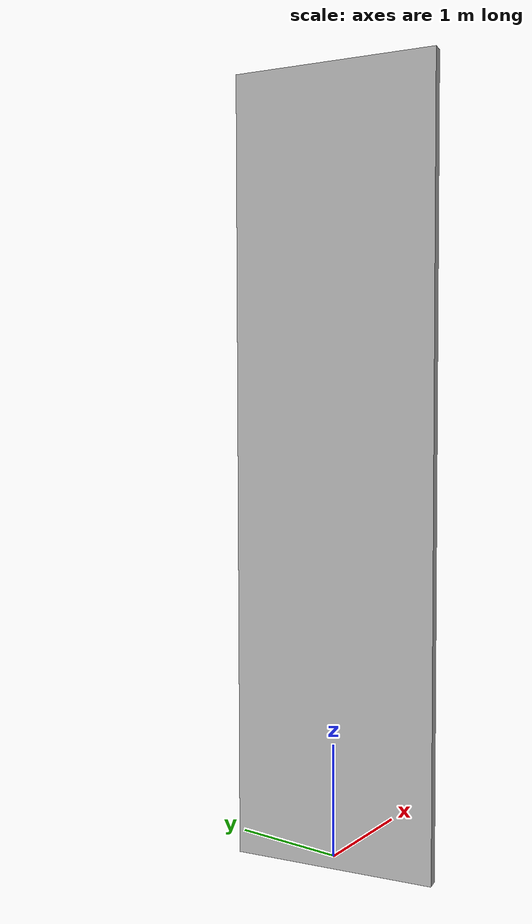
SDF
<?xml version="1.0" ?>
<sdf version="1.6">
  <model name="trafficlight">
    <static>true</static>
    <link name="link">
    <pose>0 0 0 1.5708 0 3.1416</pose>
      <visual name="visual">
        <geometry>
          <mesh>
            <uri>model://trafficlight/meshes/trafficlight.obj</uri>
            <scale>1 1 1</scale>
          </mesh>
        </geometry>
      </visual>
      <collision name="collision">
        <geometry>
          <mesh>
            <uri>model://trafficlight/meshes/trafficlight.obj</uri>
            <scale>1 1 1</scale>
          </mesh>
        </geometry>
      </collision>
    </link>
  </model>
</sdf>
